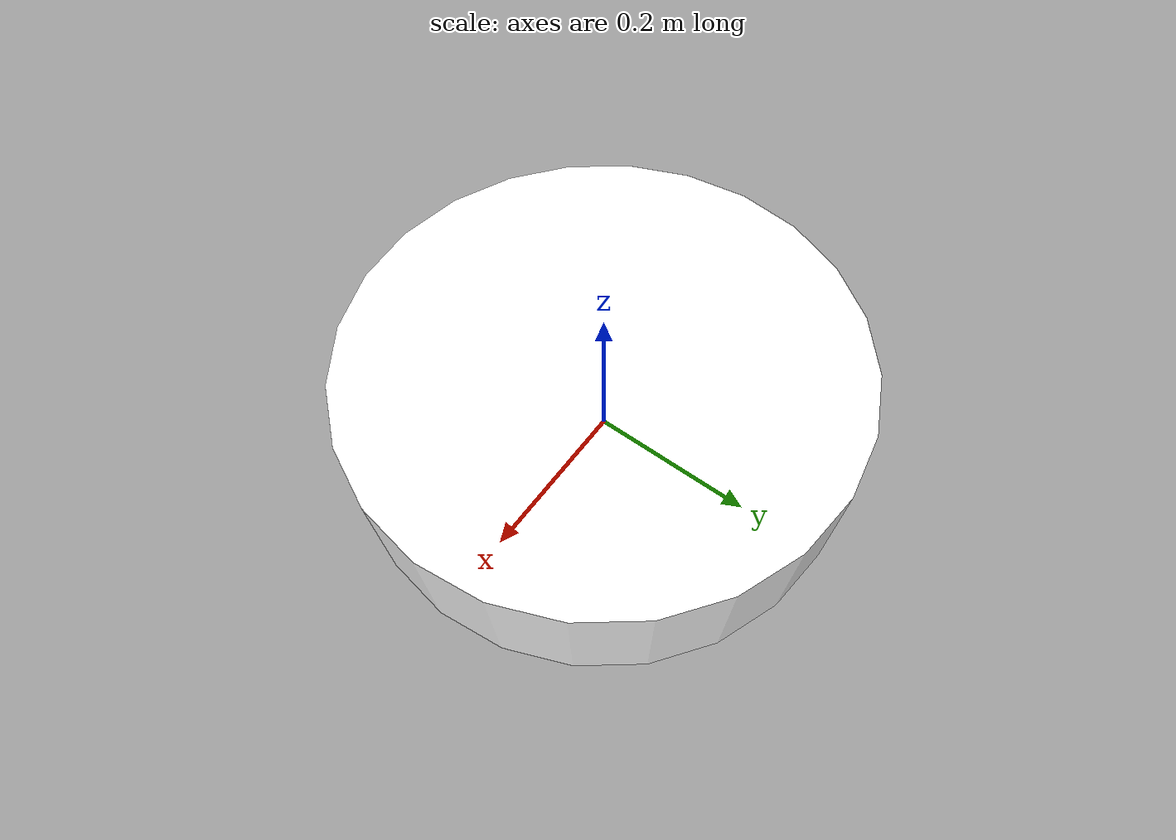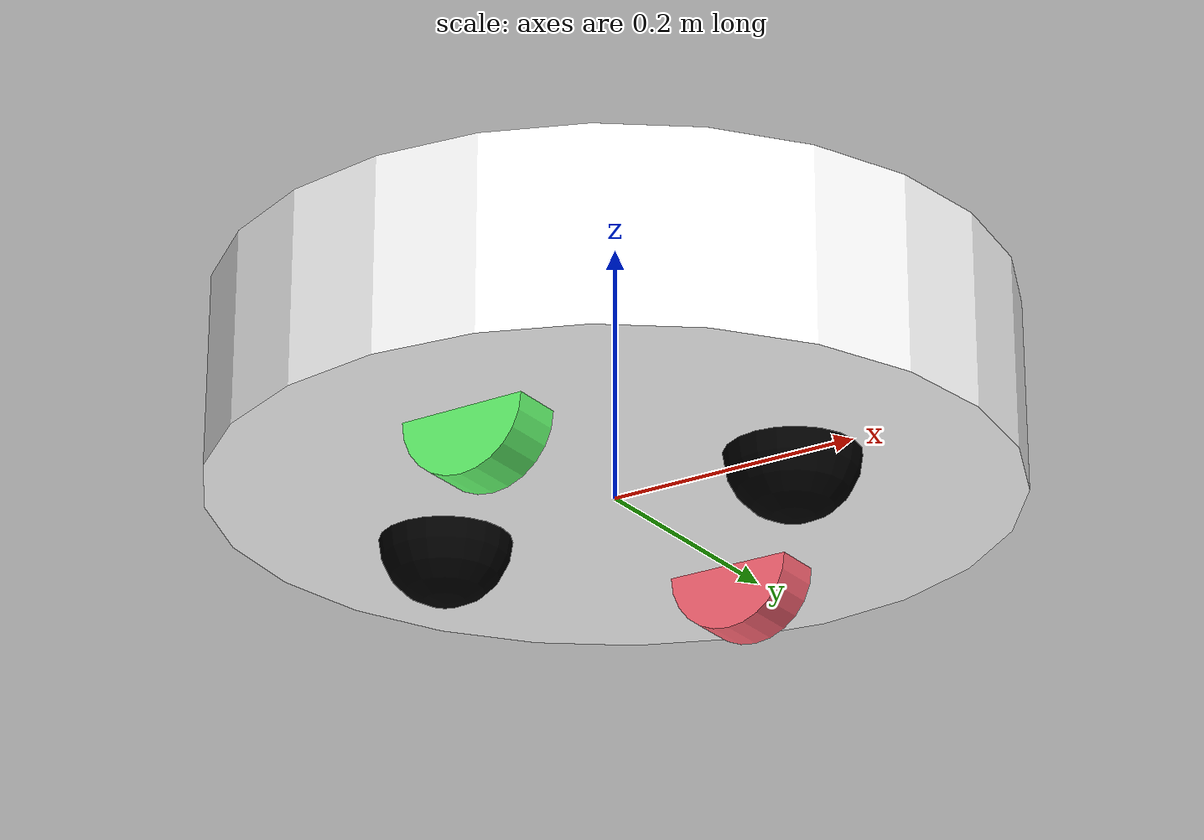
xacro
<?xml version="1.0"?>
<robot xmlns:xacro="http://www.ros.org/wiki/xacro">

    <xacro:include filename="inertia_macros.xacro" />

    <material name="white">
        <color rgba="1 1 1 1"/>
    </material>

    <material name="orange">
        <color rgba="1 0.3 0.1 1"/>
    </material>

    <material name="blue">
        <color rgba="0.2 0.2 1 1"/>
    </material>

    <material name="black">
        <color rgba="0 0 0 1"/>
    </material>

    <material name="red">
        <color rgba="0.990 0.396 0.455 1"/>
    </material>

    <material name="green">
        <color rgba="0.396 0.990 0.436 1"/>
    </material>

    <!--base_link is the root link of the robot-->
    <link name="base_link">

    </link>

    <!--Foot print link-->
    <joint name="base_footprint_joint" type="fixed">
        <parent link="base_link"/>
        <child link="base_footprint"/>
        <origin xyz="0 0 0" rpy="0 0 0"/>
    </joint>

    <link name="base_footprint">
    </link>

    <joint name="chassis_joint" type="fixed">
        <origin xyz="-0.15 0 0" rpy="0 0 0"/>
        <parent link="base_link"/>
        <child link="chassis"/>
    </joint>

    <link name="chassis">
        <visual>
            <origin xyz="0.15 0 0.075" rpy="0 0 0"/>
            <geometry>
                <cylinder radius="0.3" length="0.15"/>
            </geometry>
            <material name="white"/>
        </visual>
        <collision>
            <origin xyz="0.15 0 0.075" rpy="0 0 0"/>
            <geometry>
                <cylinder radius="0.3" length="0.15"/>
            </geometry>
        </collision>
        <xacro:inertial_cylinder mass="1.0" length="0.15" radius="0.3">
            <origin xyz="0.15 0 0.075" rpy="0 0 0"/>
        </xacro:inertial_cylinder>
    </link>

    <gazebo reference="chassis">
        <material>Gazebo/White</material>
    </gazebo>

    <joint name="left_wheel_joint" type="continuous">
        <origin xyz="0 0.175 0" rpy="-${pi/2} 0 0"/>
        <parent link="base_link"/>
        <child link="left_wheel"/>
        <axis xyz="0 0 1"/>
    </joint>

    <link name="left_wheel">
        <visual>
            <origin xyz="0 0 0" rpy="0 0 0"/>
            <geometry>
                <cylinder radius="0.05" length="0.04"/>
            </geometry>
            <material name="red"/>
        </visual>
        <collision>
            <origin xyz="0 0 0" rpy="0 0 0"/>
            <geometry>
                <sphere radius="0.05"/>
            </geometry>
            <material name="red"/>
        </collision>
        <xacro:inertial_cylinder mass="0.1" length="0.04" radius="0.05">
            <origin xyz="0 0 0" rpy="0 0 0"/>
        </xacro:inertial_cylinder>
    </link>

    <gazebo reference="left_wheel">
        <material>Gazebo/Red</material>
    </gazebo>

    <joint name="right_wheel_joint" type="continuous">
        <origin xyz="0 -0.175 0" rpy="${pi/2} 0 0"/>
        <parent link="base_link"/>
        <child link="right_wheel"/>
        <axis xyz="0 0 -1"/>
    </joint>

    <link name="right_wheel">
        <visual>
            <origin xyz="0 0 0" rpy="0 0 0"/>
            <geometry>
                <cylinder radius="0.05" length="0.04"/>
            </geometry>
            <material name="green"/>
        </visual>
        <collision>
            <origin xyz="0 0 0" rpy="0 0 0"/>
            <geometry>
                <sphere radius="0.05"/>
            </geometry>
            <material name="green"/>
        </collision>
        <xacro:inertial_cylinder mass="0.1" length="0.04" radius="0.05">
            <origin xyz="0 0 0" rpy="0 0 0"/>
        </xacro:inertial_cylinder>
    </link>

    <gazebo reference="right_wheel">
        <material>Gazebo/Green</material>
    </gazebo>

    <joint name="caster_wheel_joint" type="fixed">
        <parent link="base_link"/>
        <child link="caster_wheel"/>
        <origin xyz="0.15 0 0" rpy="0 0 0"/>
    </joint>

    <link name="caster_wheel">
        <visual>
            <geometry>
                <sphere radius="0.05" />
            </geometry>
            <material name="black"/>
        </visual>
        <collision>
            <geometry>
                <sphere radius="0.05" />
            </geometry>
            <material name="black"/>
        </collision>
        <xacro:inertial_sphere mass="0.1" radius="0.05">
            <origin xyz="0 0 0" rpy="0 0 0"/>
        </xacro:inertial_sphere>
    </link>

    <gazebo reference="caster_wheel">
        <material>Gazebo/Black</material>
        <mu1 value="0.001"/>
        <mu2 value="0.001"/>
    </gazebo>

    <joint name="caster_wheel_joint2" type="fixed">
        <parent link="base_link"/>
        <child link="caster_wheel2"/>
        <origin xyz="-0.15 0 0" rpy="0 0 0"/>
    </joint>

        <link name="caster_wheel2">
        <visual>
            <geometry>
                <sphere radius="0.05" />
            </geometry>
            <material name="black"/>
        </visual>
        <collision>
            <geometry>
                <sphere radius="0.05" />
            </geometry>
            <material name="black"/>
        </collision>
        <xacro:inertial_sphere mass="0.1" radius="0.05">
            <origin xyz="0 0 0" rpy="0 0 0"/>
        </xacro:inertial_sphere>
    </link>

    <gazebo reference="caster_wheel2">
        <material>Gazebo/Black</material>
        <mu1 value="0.001"/>
        <mu2 value="0.001"/>
    </gazebo>

</robot>
